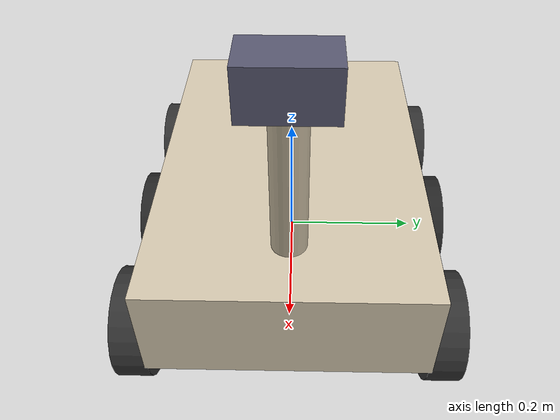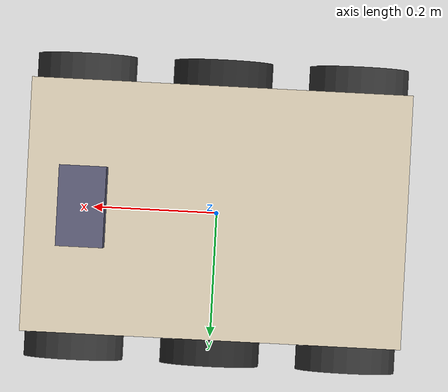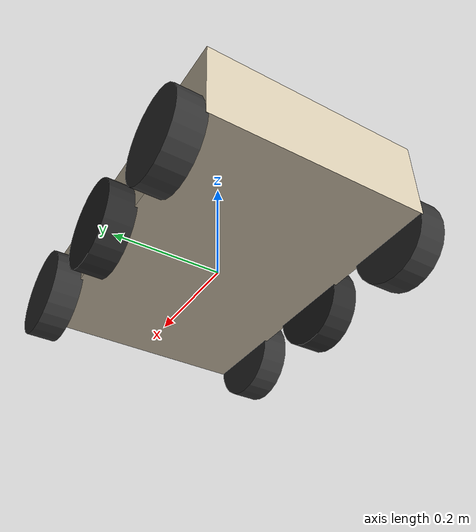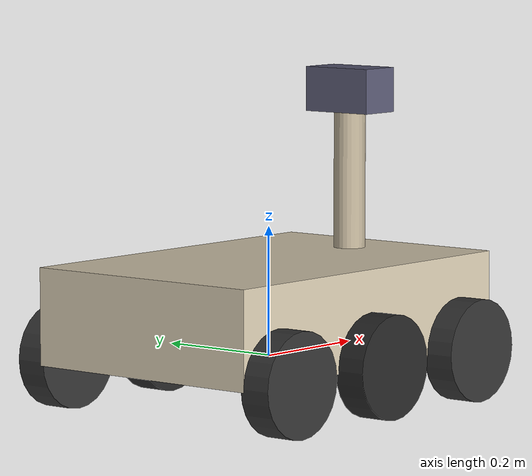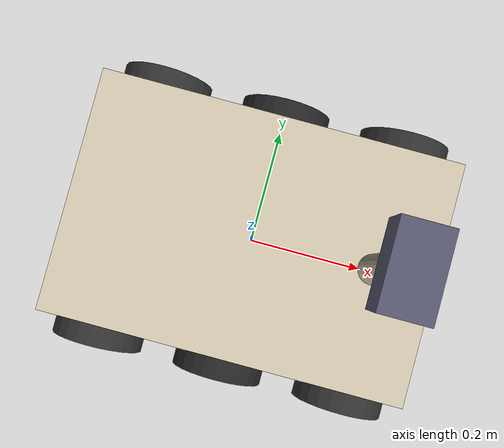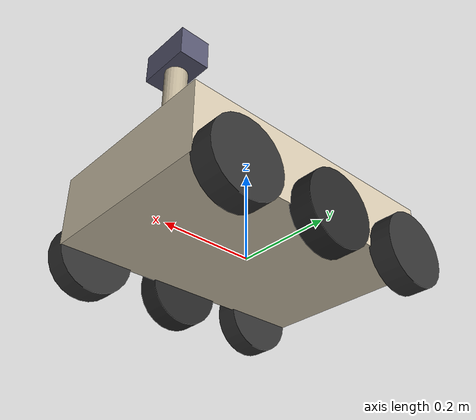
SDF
<?xml version="1.0" ?>
<sdf version="1.9">
  <model name="mars_rover">

    <!-- ── Chassis / Body ───────────────────────────────────────────────── -->
    <link name="base_link">
      <pose>0 0 0.075 0 0 0</pose>
      <inertial>
        <mass>8.0</mass>
        <inertia>
          <ixx>0.084</ixx>
          <iyy>0.258</iyy>
          <izz>0.320</izz>
          <ixy>0</ixy><ixz>0</ixz><iyz>0</iyz>
        </inertia>
      </inertial>
      <collision name="chassis_collision">
        <geometry>
          <box><size>0.6 0.4 0.15</size></box>
        </geometry>
        <surface>
          <friction>
            <ode><mu>0.8</mu><mu2>0.8</mu2></ode>
          </friction>
        </surface>
      </collision>
      <visual name="chassis_visual">
        <geometry>
          <box><size>0.6 0.4 0.15</size></box>
        </geometry>
        <material>
          <ambient>0.85 0.8 0.7 1</ambient>
          <diffuse>0.85 0.8 0.7 1</diffuse>
          <specular>0.15 0.15 0.15 1</specular>
        </material>
      </visual>

      <!-- 360 LiDAR sensor on top of body -->
      <sensor name="lidar_360" type="gpu_lidar">
        <pose>0 0 0.12 0 0 0</pose>
        <topic>rover_lidar</topic>
        <update_rate>5</update_rate>
        <lidar>
          <scan>
            <horizontal>
              <samples>360</samples>
              <resolution>1</resolution>
              <min_angle>-3.14159</min_angle>
              <max_angle>3.14159</max_angle>
            </horizontal>
            <vertical>
              <samples>1</samples>
              <resolution>1</resolution>
              <min_angle>0</min_angle>
              <max_angle>0</max_angle>
            </vertical>
          </scan>
          <range>
            <min>0.15</min>
            <max>12.0</max>
            <resolution>0.01</resolution>
          </range>
        </lidar>
        <always_on>true</always_on>
        <visualize>false</visualize>
      </sensor>
    </link>

    <!-- ── Instrument Mast ──────────────────────────────────────────────── -->
    <link name="mast_link">
      <pose>0.2 0 0.225 0 0 0</pose>
      <inertial>
        <mass>0.3</mass>
        <inertia>
          <ixx>0.00250</ixx><iyy>0.00250</iyy><izz>0.000050</izz>
          <ixy>0</ixy><ixz>0</ixz><iyz>0</iyz>
        </inertia>
      </inertial>
      <visual name="mast_visual">
        <pose>0 0 0 0 0 0</pose>
        <geometry>
          <cylinder>
            <radius>0.025</radius>
            <length>0.3</length>
          </cylinder>
        </geometry>
        <material>
          <ambient>0.75 0.7 0.6 1</ambient>
          <diffuse>0.75 0.7 0.6 1</diffuse>
        </material>
      </visual>
    </link>
    <joint name="mast_joint" type="fixed">
      <parent>base_link</parent>
      <child>mast_link</child>
    </joint>

    <!-- ── Camera Head on Mast ──────────────────────────────────────────── -->
    <link name="camera_head_link">
      <pose>0.2 0 0.4 0 0 0</pose>
      <inertial>
        <mass>0.1</mass>
        <inertia>
          <ixx>0.000017</ixx><iyy>0.000017</iyy><izz>0.000017</izz>
          <ixy>0</ixy><ixz>0</ixz><iyz>0</iyz>
        </inertia>
      </inertial>
      <visual name="head_visual">
        <geometry>
          <box><size>0.07 0.12 0.07</size></box>
        </geometry>
        <material>
          <ambient>0.3 0.3 0.4 1</ambient>
          <diffuse>0.35 0.35 0.45 1</diffuse>
        </material>
      </visual>
    </link>
    <joint name="camera_head_joint" type="fixed">
      <parent>base_link</parent>
      <child>camera_head_link</child>
    </joint>

    <!-- Front-Left Wheel -->
    <link name="front_left_wheel">
      <pose>0.22 0.22 0.005 1.5708 0 0</pose>
      <inertial>
        <mass>0.5</mass>
        <inertia>
          <ixx>0.000820</ixx><iyy>0.000820</iyy><izz>0.001600</izz>
          <ixy>0</ixy><ixz>0</ixz><iyz>0</iyz>
        </inertia>
      </inertial>
      <collision name="collision">
        <geometry><cylinder><radius>0.08</radius><length>0.05</length></cylinder></geometry>
        <surface><friction><ode><mu>1.2</mu><mu2>1.2</mu2></ode></friction></surface>
      </collision>
      <visual name="visual">
        <geometry><cylinder><radius>0.08</radius><length>0.05</length></cylinder></geometry>
        <material><ambient>0.15 0.15 0.15 1</ambient><diffuse>0.2 0.2 0.2 1</diffuse></material>
      </visual>
    </link>
    <joint name="front_left_wheel_joint" type="revolute">
      <parent>base_link</parent>
      <child>front_left_wheel</child>
      <axis>
        <xyz expressed_in="__model__">0 1 0</xyz>
        <dynamics><damping>0.005</damping><friction>0.01</friction></dynamics>
        <limit><lower>-1e+16</lower><upper>1e+16</upper></limit>
      </axis>
    </joint>

    <!-- Front-Right Wheel -->
    <link name="front_right_wheel">
      <pose>0.22 -0.22 0.005 1.5708 0 0</pose>
      <inertial>
        <mass>0.5</mass>
        <inertia>
          <ixx>0.000820</ixx><iyy>0.000820</iyy><izz>0.001600</izz>
          <ixy>0</ixy><ixz>0</ixz><iyz>0</iyz>
        </inertia>
      </inertial>
      <collision name="collision">
        <geometry><cylinder><radius>0.08</radius><length>0.05</length></cylinder></geometry>
        <surface><friction><ode><mu>1.2</mu><mu2>1.2</mu2></ode></friction></surface>
      </collision>
      <visual name="visual">
        <geometry><cylinder><radius>0.08</radius><length>0.05</length></cylinder></geometry>
        <material><ambient>0.15 0.15 0.15 1</ambient><diffuse>0.2 0.2 0.2 1</diffuse></material>
      </visual>
    </link>
    <joint name="front_right_wheel_joint" type="revolute">
      <parent>base_link</parent>
      <child>front_right_wheel</child>
      <axis>
        <xyz expressed_in="__model__">0 1 0</xyz>
        <dynamics><damping>0.005</damping><friction>0.01</friction></dynamics>
        <limit><lower>-1e+16</lower><upper>1e+16</upper></limit>
      </axis>
    </joint>

    <!-- Mid-Left Wheel (driven by DiffDrive) -->
    <link name="left_mid_wheel">
      <pose>0.0 0.22 0.005 1.5708 0 0</pose>
      <inertial>
        <mass>0.5</mass>
        <inertia>
          <ixx>0.000820</ixx><iyy>0.000820</iyy><izz>0.001600</izz>
          <ixy>0</ixy><ixz>0</ixz><iyz>0</iyz>
        </inertia>
      </inertial>
      <collision name="collision">
        <geometry><cylinder><radius>0.08</radius><length>0.05</length></cylinder></geometry>
        <surface><friction><ode><mu>1.5</mu><mu2>1.5</mu2></ode></friction></surface>
      </collision>
      <visual name="visual">
        <geometry><cylinder><radius>0.08</radius><length>0.05</length></cylinder></geometry>
        <material><ambient>0.1 0.1 0.1 1</ambient><diffuse>0.15 0.15 0.15 1</diffuse></material>
      </visual>
    </link>
    <joint name="left_mid_wheel_joint" type="revolute">
      <parent>base_link</parent>
      <child>left_mid_wheel</child>
      <axis>
        <xyz expressed_in="__model__">0 1 0</xyz>
        <dynamics><damping>0.005</damping><friction>0.01</friction></dynamics>
        <limit><lower>-1e+16</lower><upper>1e+16</upper></limit>
      </axis>
    </joint>

    <!-- Mid-Right Wheel (driven by DiffDrive) -->
    <link name="right_mid_wheel">
      <pose>0.0 -0.22 0.005 1.5708 0 0</pose>
      <inertial>
        <mass>0.5</mass>
        <inertia>
          <ixx>0.000820</ixx><iyy>0.000820</iyy><izz>0.001600</izz>
          <ixy>0</ixy><ixz>0</ixz><iyz>0</iyz>
        </inertia>
      </inertial>
      <collision name="collision">
        <geometry><cylinder><radius>0.08</radius><length>0.05</length></cylinder></geometry>
        <surface><friction><ode><mu>1.5</mu><mu2>1.5</mu2></ode></friction></surface>
      </collision>
      <visual name="visual">
        <geometry><cylinder><radius>0.08</radius><length>0.05</length></cylinder></geometry>
        <material><ambient>0.1 0.1 0.1 1</ambient><diffuse>0.15 0.15 0.15 1</diffuse></material>
      </visual>
    </link>
    <joint name="right_mid_wheel_joint" type="revolute">
      <parent>base_link</parent>
      <child>right_mid_wheel</child>
      <axis>
        <xyz expressed_in="__model__">0 1 0</xyz>
        <dynamics><damping>0.005</damping><friction>0.01</friction></dynamics>
        <limit><lower>-1e+16</lower><upper>1e+16</upper></limit>
      </axis>
    </joint>

    <!-- Rear-Left Wheel -->
    <link name="rear_left_wheel">
      <pose>-0.22 0.22 0.005 1.5708 0 0</pose>
      <inertial>
        <mass>0.5</mass>
        <inertia>
          <ixx>0.000820</ixx><iyy>0.000820</iyy><izz>0.001600</izz>
          <ixy>0</ixy><ixz>0</ixz><iyz>0</iyz>
        </inertia>
      </inertial>
      <collision name="collision">
        <geometry><cylinder><radius>0.08</radius><length>0.05</length></cylinder></geometry>
        <surface><friction><ode><mu>1.2</mu><mu2>1.2</mu2></ode></friction></surface>
      </collision>
      <visual name="visual">
        <geometry><cylinder><radius>0.08</radius><length>0.05</length></cylinder></geometry>
        <material><ambient>0.15 0.15 0.15 1</ambient><diffuse>0.2 0.2 0.2 1</diffuse></material>
      </visual>
    </link>
    <joint name="rear_left_wheel_joint" type="revolute">
      <parent>base_link</parent>
      <child>rear_left_wheel</child>
      <axis>
        <xyz expressed_in="__model__">0 1 0</xyz>
        <dynamics><damping>0.005</damping><friction>0.01</friction></dynamics>
        <limit><lower>-1e+16</lower><upper>1e+16</upper></limit>
      </axis>
    </joint>

    <!-- Rear-Right Wheel -->
    <link name="rear_right_wheel">
      <pose>-0.22 -0.22 0.005 1.5708 0 0</pose>
      <inertial>
        <mass>0.5</mass>
        <inertia>
          <ixx>0.000820</ixx><iyy>0.000820</iyy><izz>0.001600</izz>
          <ixy>0</ixy><ixz>0</ixz><iyz>0</iyz>
        </inertia>
      </inertial>
      <collision name="collision">
        <geometry><cylinder><radius>0.08</radius><length>0.05</length></cylinder></geometry>
        <surface><friction><ode><mu>1.2</mu><mu2>1.2</mu2></ode></friction></surface>
      </collision>
      <visual name="visual">
        <geometry><cylinder><radius>0.08</radius><length>0.05</length></cylinder></geometry>
        <material><ambient>0.15 0.15 0.15 1</ambient><diffuse>0.2 0.2 0.2 1</diffuse></material>
      </visual>
    </link>
    <joint name="rear_right_wheel_joint" type="revolute">
      <parent>base_link</parent>
      <child>rear_right_wheel</child>
      <axis>
        <xyz expressed_in="__model__">0 1 0</xyz>
        <dynamics><damping>0.005</damping><friction>0.01</friction></dynamics>
        <limit><lower>-1e+16</lower><upper>1e+16</upper></limit>
      </axis>
    </joint>

    <!-- ── Plugins ───────────────────────────────────────────────────────── -->

    <!-- DiffDrive on mid wheel pair -->
    <plugin filename="gz-sim-diff-drive-system"
            name="gz::sim::systems::DiffDrive">
      <left_joint>left_mid_wheel_joint</left_joint>
      <right_joint>right_mid_wheel_joint</right_joint>
      <wheel_separation>0.44</wheel_separation>
      <wheel_radius>0.08</wheel_radius>
      <topic>cmd_vel</topic>
      <odom_topic>rover_odom</odom_topic>
      <odom_publish_frequency>10</odom_publish_frequency>
      <frame_id>odom</frame_id>
      <child_frame_id>base_link</child_frame_id>
      <min_velocity>-0.6</min_velocity>
      <max_velocity>0.6</max_velocity>
      <min_acceleration>-1.5</min_acceleration>
      <max_acceleration>1.5</max_acceleration>
    </plugin>

    <!-- DiffDrive on front wheel pair — 6WD: same cmd_vel, separate odom topic -->
    <plugin filename="gz-sim-diff-drive-system"
            name="gz::sim::systems::DiffDrive">
      <left_joint>front_left_wheel_joint</left_joint>
      <right_joint>front_right_wheel_joint</right_joint>
      <wheel_separation>0.44</wheel_separation>
      <wheel_radius>0.08</wheel_radius>
      <topic>cmd_vel</topic>
      <odom_topic>rover_odom_front</odom_topic>
      <odom_publish_frequency>0</odom_publish_frequency>
      <frame_id>odom</frame_id>
      <child_frame_id>base_link_front</child_frame_id>
      <min_velocity>-0.6</min_velocity>
      <max_velocity>0.6</max_velocity>
      <min_acceleration>-1.5</min_acceleration>
      <max_acceleration>1.5</max_acceleration>
    </plugin>

    <!-- DiffDrive on rear wheel pair — 6WD: same cmd_vel, separate odom topic -->
    <plugin filename="gz-sim-diff-drive-system"
            name="gz::sim::systems::DiffDrive">
      <left_joint>rear_left_wheel_joint</left_joint>
      <right_joint>rear_right_wheel_joint</right_joint>
      <wheel_separation>0.44</wheel_separation>
      <wheel_radius>0.08</wheel_radius>
      <topic>cmd_vel</topic>
      <odom_topic>rover_odom_rear</odom_topic>
      <odom_publish_frequency>0</odom_publish_frequency>
      <frame_id>odom</frame_id>
      <child_frame_id>base_link_rear</child_frame_id>
      <min_velocity>-0.6</min_velocity>
      <max_velocity>0.6</max_velocity>
      <min_acceleration>-1.5</min_acceleration>
      <max_acceleration>1.5</max_acceleration>
    </plugin>

    <!-- Joint state publisher -->
    <plugin filename="gz-sim-joint-state-publisher-system"
            name="gz::sim::systems::JointStatePublisher">
      <topic>rover_joint_states</topic>
      <joint_name>front_left_wheel_joint</joint_name>
      <joint_name>front_right_wheel_joint</joint_name>
      <joint_name>left_mid_wheel_joint</joint_name>
      <joint_name>right_mid_wheel_joint</joint_name>
      <joint_name>rear_left_wheel_joint</joint_name>
      <joint_name>rear_right_wheel_joint</joint_name>
    </plugin>

  </model>
</sdf>
